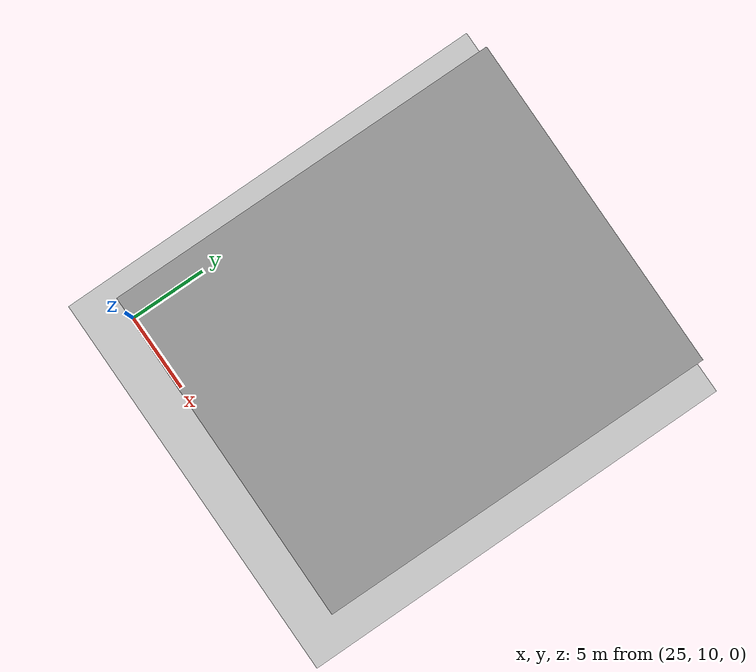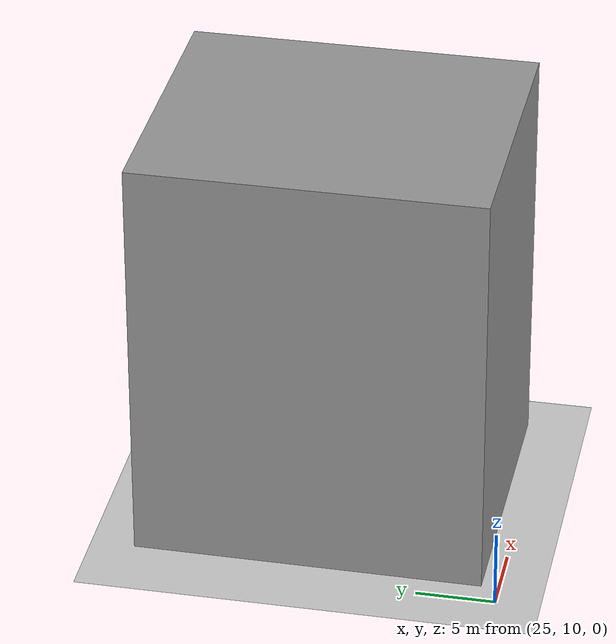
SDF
<sdf version="1.6">
 <world name="default">
  <light name="sun" type="directional">
   <pose>0 0 10 0 -0 0</pose>
   <diffuse>0.8 0.8 0.8 1</diffuse>
   <specular>0.1 0.1 0.1 1</specular>
   <attenuation>
    <range>1000</range>
    <constant>0.9</constant>
    <linear>0.01</linear>
    <quadratic>0.001</quadratic>
   </attenuation>
   <direction>-0.5 0.5 -1</direction>
  </light>
  <gravity>0 0 -9.8</gravity>
  <magnetic_field>6e-06 2.3e-05 -4.2e-05</magnetic_field>
  <atmosphere type="adiabatic"/>
  <physics name="default_physics" default="0" type="ode">
   <max_step_size>0.001</max_step_size>
   <real_time_factor>1</real_time_factor>
   <real_time_update_rate>1000</real_time_update_rate>
  </physics>
  <scene><ambient>0.4 0.4 0.4 1</ambient><background>0.7 0.7 0.7 1</background><shadows>1</shadows></scene>
  <spherical_coordinates>
   <surface_model>EARTH_WGS84</surface_model>
   <latitude_deg>0</latitude_deg>
   <longitude_deg>0</longitude_deg>
   <elevation>0</elevation>
   <heading_deg>0</heading_deg>
  </spherical_coordinates>
  <model name="cft_service_plane">
   <static>1</static>
   <link name="link">
    <collision name="collision">
     <geometry><plane><normal>0 0 1</normal><size>355 355</size></plane></geometry>
     <surface><friction><ode><mu>100</mu><mu2>50</mu2></ode></friction></surface>
    </collision>
    <visual name="visual">
     <cast_shadows>0</cast_shadows>
     <geometry><plane><normal>0 0 1</normal><size>355 355</size></plane></geometry>
     <material>
      <script>
       <uri>model://cft_service_plane/materials/scripts</uri>
       <uri>model://cft_service_plane/materials/textures</uri>
       <name>CftServicePlane/Image</name>
      </script>
     </material>
    </visual>
   </link>
   <pose>-0.35124 -0.016781 0 0 -0 0</pose>
  </model>
  <model name="unit_box_0_1">
   <pose>36.0585 22.1986 13.5089 0 -1.8e-05 -0.004939</pose>
   <link name="link">
    <inertial>
     <mass>1</mass>
     <inertia>
      <ixx>0.166667</ixx>
      <ixy>0</ixy>
      <ixz>0</ixz>
      <iyy>0.166667</iyy>
      <iyz>0</iyz>
      <izz>0.166667</izz>
     </inertia>
    </inertial>
    <collision name="collision"><geometry><box><size>18.9258 22.2378 27.0182</size></box></geometry></collision>
    <visual name="visual">
     <geometry><box><size>18.9258 22.2378 27.0182</size></box></geometry>
     <material>
      <script><name>Gazebo/Grey</name><uri>file://media/materials/scripts/gazebo.material</uri></script>
     </material>
    </visual>
   </link>
  </model>
 </world>
</sdf>
